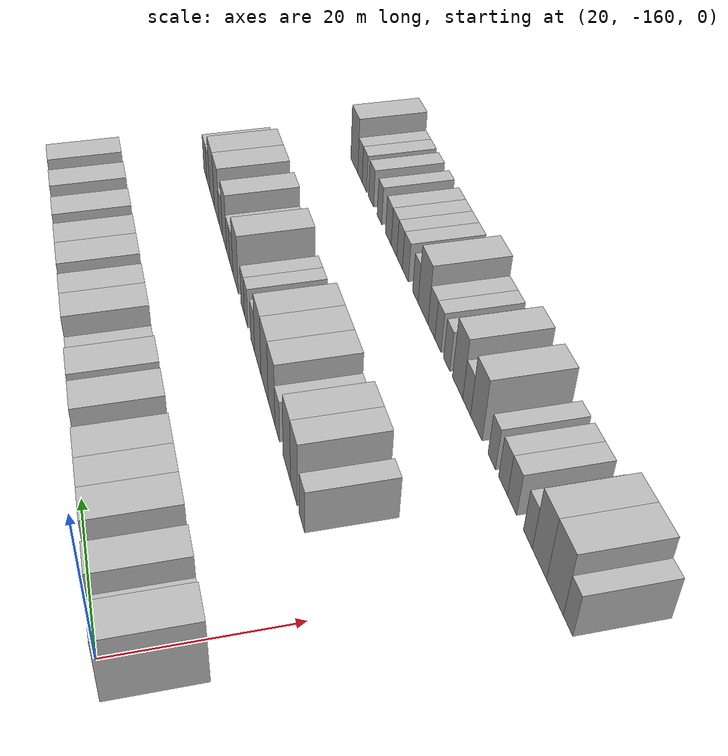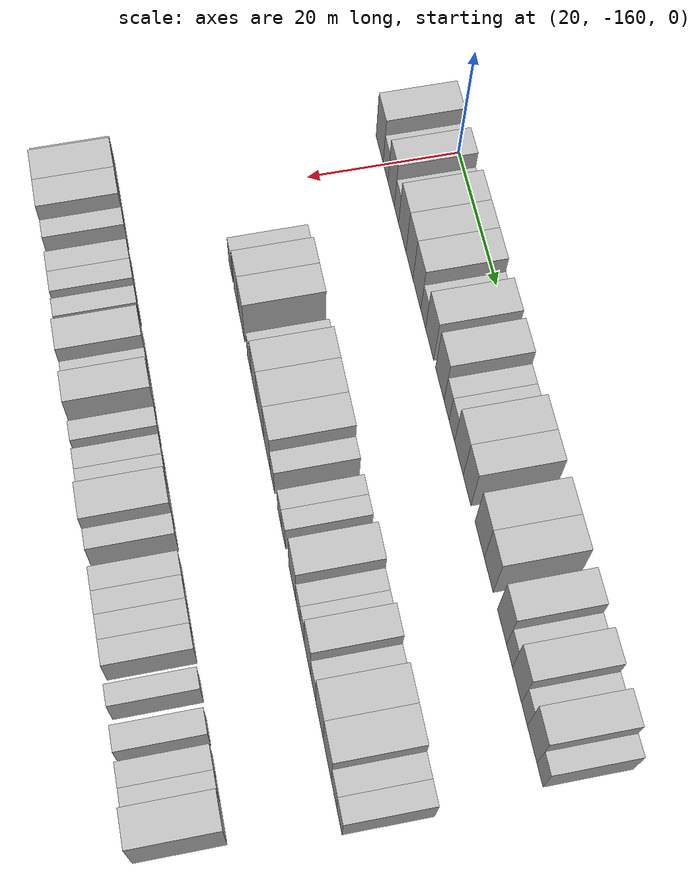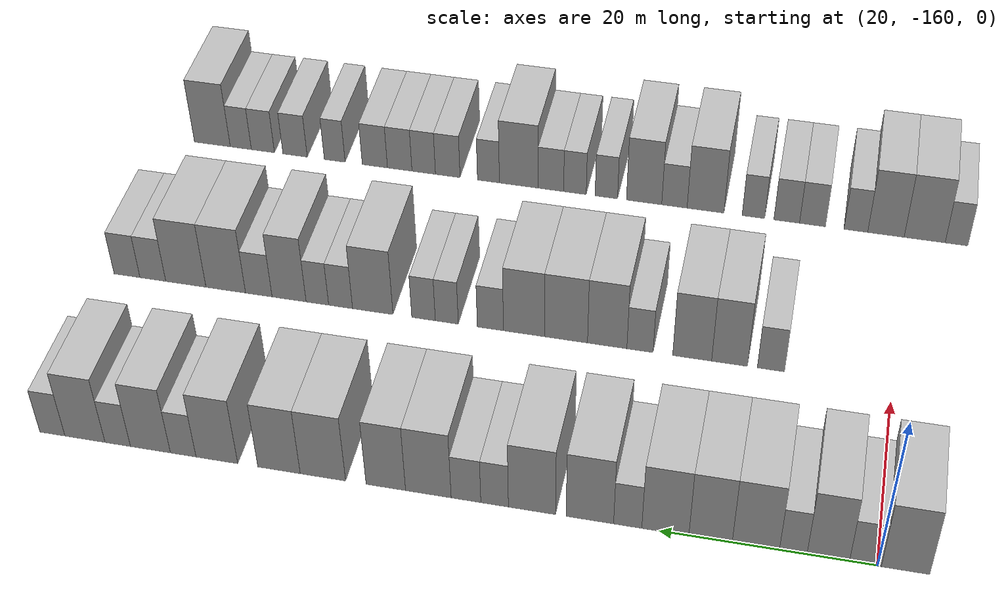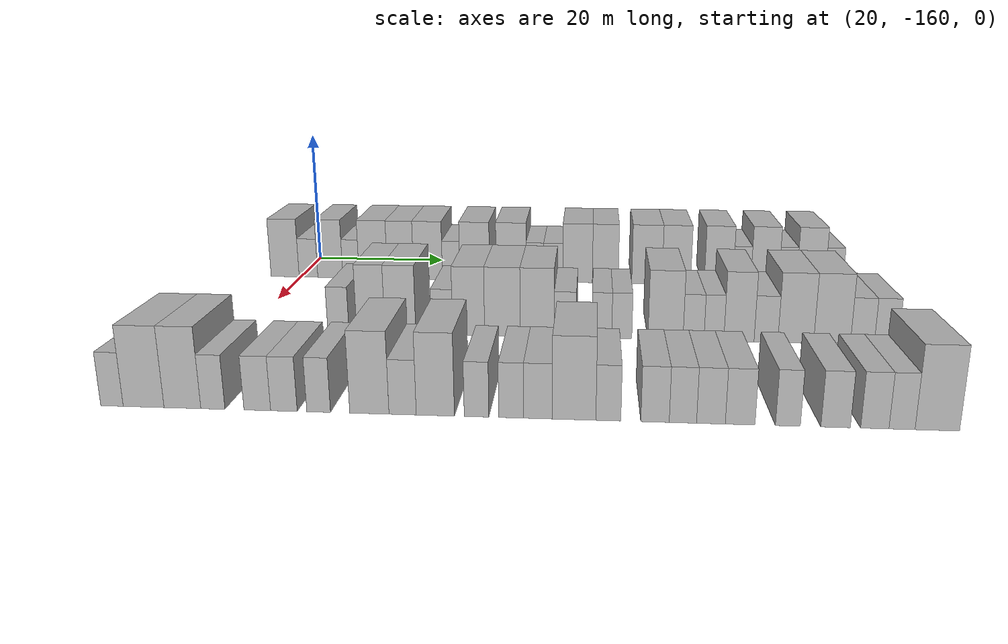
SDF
<sdf version="1.6">
 <world name="default">
  <model name="building_22">
   <static>1</static>
   <pose>25.0000 -162.4682 0 0.000000 0.000000 0.000000</pose>
   <link name="link">
    <pose>0 0 4.50 0 0 0</pose>
    <collision name="collision"><geometry><box><size>10.0000 4.3366 9.0000</size></box></geometry></collision>
    <visual name="visual">
     <cast_shadows>0</cast_shadows>
     <geometry><box><size>10.0000 4.3366 9.0000</size></box></geometry>
     <material>
      <script>
       <uri>model://HANNAS_wall/materials/scripts</uri>
       <uri>model://HANNAS_wall/materials/textures</uri>
       <name>vrc/HANNAS_wall</name>
      </script>
     </material>
    </visual>
   </link>
  </model>
  <model name="building_23">
   <static>1</static>
   <pose>25.0000 -158.8605 0 0.000000 0.000000 0.000000</pose>
   <link name="link">
    <pose>0 0 3.00 0 0 0</pose>
    <collision name="collision"><geometry><box><size>10.0000 2.8788 6.0000</size></box></geometry></collision>
    <visual name="visual">
     <cast_shadows>0</cast_shadows>
     <geometry><box><size>10.0000 2.8788 6.0000</size></box></geometry>
     <material>
      <script>
       <uri>model://HANNAS_wall/materials/scripts</uri>
       <uri>model://HANNAS_wall/materials/textures</uri>
       <name>vrc/HANNAS_wall</name>
      </script>
     </material>
    </visual>
   </link>
  </model>
  <model name="building_24">
   <static>1</static>
   <pose>25.0000 -155.4909 0 0.000000 0.000000 0.000000</pose>
   <link name="link">
    <pose>0 0 4.50 0 0 0</pose>
    <collision name="collision"><geometry><box><size>10.0000 3.8604 9.0000</size></box></geometry></collision>
    <visual name="visual">
     <cast_shadows>0</cast_shadows>
     <geometry><box><size>10.0000 3.8604 9.0000</size></box></geometry>
     <material>
      <script>
       <uri>model://HANNAS_wall/materials/scripts</uri>
       <uri>model://HANNAS_wall/materials/textures</uri>
       <name>vrc/HANNAS_wall</name>
      </script>
     </material>
    </visual>
   </link>
  </model>
  <model name="building_25">
   <static>1</static>
   <pose>25.0000 -152.3053 0 0.000000 0.000000 0.000000</pose>
   <link name="link">
    <pose>0 0 3.00 0 0 0</pose>
    <collision name="collision"><geometry><box><size>10.0000 2.5108 6.0000</size></box></geometry></collision>
    <visual name="visual">
     <cast_shadows>0</cast_shadows>
     <geometry><box><size>10.0000 2.5108 6.0000</size></box></geometry>
     <material>
      <script>
       <uri>model://HANNAS_wall/materials/scripts</uri>
       <uri>model://HANNAS_wall/materials/textures</uri>
       <name>vrc/HANNAS_wall</name>
      </script>
     </material>
    </visual>
   </link>
  </model>
  <model name="building_26">
   <static>1</static>
   <pose>25.0000 -148.8860 0 0.000000 0.000000 0.000000</pose>
   <link name="link">
    <pose>0 0 4.50 0 0 0</pose>
    <collision name="collision"><geometry><box><size>10.0000 4.3277 9.0000</size></box></geometry></collision>
    <visual name="visual">
     <cast_shadows>0</cast_shadows>
     <geometry><box><size>10.0000 4.3277 9.0000</size></box></geometry>
     <material>
      <script>
       <uri>model://HANNAS_wall/materials/scripts</uri>
       <uri>model://HANNAS_wall/materials/textures</uri>
       <name>vrc/HANNAS_wall</name>
      </script>
     </material>
    </visual>
   </link>
  </model>
  <model name="building_27">
   <static>1</static>
   <pose>25.0000 -144.7227 0 0.000000 0.000000 0.000000</pose>
   <link name="link">
    <pose>0 0 4.50 0 0 0</pose>
    <collision name="collision"><geometry><box><size>10.0000 3.9991 9.0000</size></box></geometry></collision>
    <visual name="visual">
     <cast_shadows>0</cast_shadows>
     <geometry><box><size>10.0000 3.9991 9.0000</size></box></geometry>
     <material>
      <script>
       <uri>model://HANNAS_wall/materials/scripts</uri>
       <uri>model://HANNAS_wall/materials/textures</uri>
       <name>vrc/HANNAS_wall</name>
      </script>
     </material>
    </visual>
   </link>
  </model>
  <model name="building_28">
   <static>1</static>
   <pose>25.0000 -140.5339 0 0.000000 0.000000 0.000000</pose>
   <link name="link">
    <pose>0 0 4.50 0 0 0</pose>
    <collision name="collision"><geometry><box><size>10.0000 4.3785 9.0000</size></box></geometry></collision>
    <visual name="visual">
     <cast_shadows>0</cast_shadows>
     <geometry><box><size>10.0000 4.3785 9.0000</size></box></geometry>
     <material>
      <script>
       <uri>model://HANNAS_wall/materials/scripts</uri>
       <uri>model://HANNAS_wall/materials/textures</uri>
       <name>vrc/HANNAS_wall</name>
      </script>
     </material>
    </visual>
   </link>
  </model>
  <model name="building_29">
   <static>1</static>
   <pose>25.0000 -137.0262 0 0.000000 0.000000 0.000000</pose>
   <link name="link">
    <pose>0 0 3.00 0 0 0</pose>
    <collision name="collision"><geometry><box><size>10.0000 2.6369 6.0000</size></box></geometry></collision>
    <visual name="visual">
     <cast_shadows>0</cast_shadows>
     <geometry><box><size>10.0000 2.6369 6.0000</size></box></geometry>
     <material>
      <script>
       <uri>model://HANNAS_wall/materials/scripts</uri>
       <uri>model://HANNAS_wall/materials/textures</uri>
       <name>vrc/HANNAS_wall</name>
      </script>
     </material>
    </visual>
   </link>
  </model>
  <model name="building_30">
   <static>1</static>
   <pose>25.0000 -133.4724 0 0.000000 0.000000 0.000000</pose>
   <link name="link">
    <pose>0 0 4.50 0 0 0</pose>
    <collision name="collision"><geometry><box><size>10.0000 4.4707 9.0000</size></box></geometry></collision>
    <visual name="visual">
     <cast_shadows>0</cast_shadows>
     <geometry><box><size>10.0000 4.4707 9.0000</size></box></geometry>
     <material>
      <script>
       <uri>model://HANNAS_wall/materials/scripts</uri>
       <uri>model://HANNAS_wall/materials/textures</uri>
       <name>vrc/HANNAS_wall</name>
      </script>
     </material>
    </visual>
   </link>
  </model>
  <model name="building_31">
   <static>1</static>
   <pose>25.0000 -128.0001 0 0.000000 0.000000 0.000000</pose>
   <link name="link">
    <pose>0 0 4.50 0 0 0</pose>
    <collision name="collision"><geometry><box><size>10.0000 4.4739 9.0000</size></box></geometry></collision>
    <visual name="visual">
     <cast_shadows>0</cast_shadows>
     <geometry><box><size>10.0000 4.4739 9.0000</size></box></geometry>
     <material>
      <script>
       <uri>model://HANNAS_wall/materials/scripts</uri>
       <uri>model://HANNAS_wall/materials/textures</uri>
       <name>vrc/HANNAS_wall</name>
      </script>
     </material>
    </visual>
   </link>
  </model>
  <model name="building_32">
   <static>1</static>
   <pose>25.0000 -124.4471 0 0.000000 0.000000 0.000000</pose>
   <link name="link">
    <pose>0 0 3.00 0 0 0</pose>
    <collision name="collision"><geometry><box><size>10.0000 2.6320 6.0000</size></box></geometry></collision>
    <visual name="visual">
     <cast_shadows>0</cast_shadows>
     <geometry><box><size>10.0000 2.6320 6.0000</size></box></geometry>
     <material>
      <script>
       <uri>model://HANNAS_wall/materials/scripts</uri>
       <uri>model://HANNAS_wall/materials/textures</uri>
       <name>vrc/HANNAS_wall</name>
      </script>
     </material>
    </visual>
   </link>
  </model>
  <model name="building_33">
   <static>1</static>
   <pose>25.0000 -121.7070 0 0.000000 0.000000 0.000000</pose>
   <link name="link">
    <pose>0 0 3.00 0 0 0</pose>
    <collision name="collision"><geometry><box><size>10.0000 2.8481 6.0000</size></box></geometry></collision>
    <visual name="visual">
     <cast_shadows>0</cast_shadows>
     <geometry><box><size>10.0000 2.8481 6.0000</size></box></geometry>
     <material>
      <script>
       <uri>model://HANNAS_wall/materials/scripts</uri>
       <uri>model://HANNAS_wall/materials/textures</uri>
       <name>vrc/HANNAS_wall</name>
      </script>
     </material>
    </visual>
   </link>
  </model>
  <model name="building_34">
   <static>1</static>
   <pose>25.0000 -118.0810 0 0.000000 0.000000 0.000000</pose>
   <link name="link">
    <pose>0 0 4.50 0 0 0</pose>
    <collision name="collision"><geometry><box><size>10.0000 4.4040 9.0000</size></box></geometry></collision>
    <visual name="visual">
     <cast_shadows>0</cast_shadows>
     <geometry><box><size>10.0000 4.4040 9.0000</size></box></geometry>
     <material>
      <script>
       <uri>model://HANNAS_wall/materials/scripts</uri>
       <uri>model://HANNAS_wall/materials/textures</uri>
       <name>vrc/HANNAS_wall</name>
      </script>
     </material>
    </visual>
   </link>
  </model>
  <model name="building_35">
   <static>1</static>
   <pose>25.0000 -113.9599 0 0.000000 0.000000 0.000000</pose>
   <link name="link">
    <pose>0 0 4.50 0 0 0</pose>
    <collision name="collision"><geometry><box><size>10.0000 3.8381 9.0000</size></box></geometry></collision>
    <visual name="visual">
     <cast_shadows>0</cast_shadows>
     <geometry><box><size>10.0000 3.8381 9.0000</size></box></geometry>
     <material>
      <script>
       <uri>model://HANNAS_wall/materials/scripts</uri>
       <uri>model://HANNAS_wall/materials/textures</uri>
       <name>vrc/HANNAS_wall</name>
      </script>
     </material>
    </visual>
   </link>
  </model>
  <model name="building_36">
   <static>1</static>
   <pose>25.0000 -107.8094 0 0.000000 0.000000 0.000000</pose>
   <link name="link">
    <pose>0 0 4.50 0 0 0</pose>
    <collision name="collision"><geometry><box><size>10.0000 4.4630 9.0000</size></box></geometry></collision>
    <visual name="visual">
     <cast_shadows>0</cast_shadows>
     <geometry><box><size>10.0000 4.4630 9.0000</size></box></geometry>
     <material>
      <script>
       <uri>model://HANNAS_wall/materials/scripts</uri>
       <uri>model://HANNAS_wall/materials/textures</uri>
       <name>vrc/HANNAS_wall</name>
      </script>
     </material>
    </visual>
   </link>
  </model>
  <model name="building_37">
   <static>1</static>
   <pose>25.0000 -103.4840 0 0.000000 0.000000 0.000000</pose>
   <link name="link">
    <pose>0 0 4.50 0 0 0</pose>
    <collision name="collision"><geometry><box><size>10.0000 4.1876 9.0000</size></box></geometry></collision>
    <visual name="visual">
     <cast_shadows>0</cast_shadows>
     <geometry><box><size>10.0000 4.1876 9.0000</size></box></geometry>
     <material>
      <script>
       <uri>model://HANNAS_wall/materials/scripts</uri>
       <uri>model://HANNAS_wall/materials/textures</uri>
       <name>vrc/HANNAS_wall</name>
      </script>
     </material>
    </visual>
   </link>
  </model>
  <model name="building_38">
   <static>1</static>
   <pose>25.0000 -97.3042 0 0.000000 0.000000 0.000000</pose>
   <link name="link">
    <pose>0 0 4.50 0 0 0</pose>
    <collision name="collision"><geometry><box><size>10.0000 4.1720 9.0000</size></box></geometry></collision>
    <visual name="visual">
     <cast_shadows>0</cast_shadows>
     <geometry><box><size>10.0000 4.1720 9.0000</size></box></geometry>
     <material>
      <script>
       <uri>model://HANNAS_wall/materials/scripts</uri>
       <uri>model://HANNAS_wall/materials/textures</uri>
       <name>vrc/HANNAS_wall</name>
      </script>
     </material>
    </visual>
   </link>
  </model>
  <model name="building_39">
   <static>1</static>
   <pose>25.0000 -93.9314 0 0.000000 0.000000 0.000000</pose>
   <link name="link">
    <pose>0 0 3.00 0 0 0</pose>
    <collision name="collision"><geometry><box><size>10.0000 2.5736 6.0000</size></box></geometry></collision>
    <visual name="visual">
     <cast_shadows>0</cast_shadows>
     <geometry><box><size>10.0000 2.5736 6.0000</size></box></geometry>
     <material>
      <script>
       <uri>model://HANNAS_wall/materials/scripts</uri>
       <uri>model://HANNAS_wall/materials/textures</uri>
       <name>vrc/HANNAS_wall</name>
      </script>
     </material>
    </visual>
   </link>
  </model>
  <model name="building_40">
   <static>1</static>
   <pose>25.0000 -90.6236 0 0.000000 0.000000 0.000000</pose>
   <link name="link">
    <pose>0 0 4.50 0 0 0</pose>
    <collision name="collision"><geometry><box><size>10.0000 4.0421 9.0000</size></box></geometry></collision>
    <visual name="visual">
     <cast_shadows>0</cast_shadows>
     <geometry><box><size>10.0000 4.0421 9.0000</size></box></geometry>
     <material>
      <script>
       <uri>model://HANNAS_wall/materials/scripts</uri>
       <uri>model://HANNAS_wall/materials/textures</uri>
       <name>vrc/HANNAS_wall</name>
      </script>
     </material>
    </visual>
   </link>
  </model>
  <model name="building_41">
   <static>1</static>
   <pose>25.0000 -87.3127 0 0.000000 0.000000 0.000000</pose>
   <link name="link">
    <pose>0 0 3.00 0 0 0</pose>
    <collision name="collision"><geometry><box><size>10.0000 2.5796 6.0000</size></box></geometry></collision>
    <visual name="visual">
     <cast_shadows>0</cast_shadows>
     <geometry><box><size>10.0000 2.5796 6.0000</size></box></geometry>
     <material>
      <script>
       <uri>model://HANNAS_wall/materials/scripts</uri>
       <uri>model://HANNAS_wall/materials/textures</uri>
       <name>vrc/HANNAS_wall</name>
      </script>
     </material>
    </visual>
   </link>
  </model>
  <model name="building_42">
   <static>1</static>
   <pose>25.0000 -83.9763 0 0.000000 0.000000 0.000000</pose>
   <link name="link">
    <pose>0 0 4.50 0 0 0</pose>
    <collision name="collision"><geometry><box><size>10.0000 4.0933 9.0000</size></box></geometry></collision>
    <visual name="visual">
     <cast_shadows>0</cast_shadows>
     <geometry><box><size>10.0000 4.0933 9.0000</size></box></geometry>
     <material>
      <script>
       <uri>model://HANNAS_wall/materials/scripts</uri>
       <uri>model://HANNAS_wall/materials/textures</uri>
       <name>vrc/HANNAS_wall</name>
      </script>
     </material>
    </visual>
   </link>
  </model>
  <model name="building_43">
   <static>1</static>
   <pose>25.0000 -80.6452 0 0.000000 0.000000 0.000000</pose>
   <link name="link">
    <pose>0 0 3.00 0 0 0</pose>
    <collision name="collision"><geometry><box><size>10.0000 2.5689 6.0000</size></box></geometry></collision>
    <visual name="visual">
     <cast_shadows>0</cast_shadows>
     <geometry><box><size>10.0000 2.5689 6.0000</size></box></geometry>
     <material>
      <script>
       <uri>model://HANNAS_wall/materials/scripts</uri>
       <uri>model://HANNAS_wall/materials/textures</uri>
       <name>vrc/HANNAS_wall</name>
      </script>
     </material>
    </visual>
   </link>
  </model>
  <model name="building_148">
   <static>1</static>
   <pose>47.0000 -147.9700 0 0.000000 0.000000 0.000000</pose>
   <link name="link">
    <pose>0 0 3.00 0 0 0</pose>
    <collision name="collision"><geometry><box><size>10.0000 2.7210 6.0000</size></box></geometry></collision>
    <visual name="visual">
     <cast_shadows>0</cast_shadows>
     <geometry><box><size>10.0000 2.7210 6.0000</size></box></geometry>
     <material>
      <script>
       <uri>model://HANNAS_wall/materials/scripts</uri>
       <uri>model://HANNAS_wall/materials/textures</uri>
       <name>vrc/HANNAS_wall</name>
      </script>
     </material>
    </visual>
   </link>
  </model>
  <model name="building_149">
   <static>1</static>
   <pose>47.0000 -143.8022 0 0.000000 0.000000 0.000000</pose>
   <link name="link">
    <pose>0 0 4.50 0 0 0</pose>
    <collision name="collision"><geometry><box><size>10.0000 3.6146 9.0000</size></box></geometry></collision>
    <visual name="visual">
     <cast_shadows>0</cast_shadows>
     <geometry><box><size>10.0000 3.6146 9.0000</size></box></geometry>
     <material>
      <script>
       <uri>model://HANNAS_wall/materials/scripts</uri>
       <uri>model://HANNAS_wall/materials/textures</uri>
       <name>vrc/HANNAS_wall</name>
      </script>
     </material>
    </visual>
   </link>
  </model>
  <model name="building_150">
   <static>1</static>
   <pose>47.0000 -140.0205 0 0.000000 0.000000 0.000000</pose>
   <link name="link">
    <pose>0 0 4.50 0 0 0</pose>
    <collision name="collision"><geometry><box><size>10.0000 3.9489 9.0000</size></box></geometry></collision>
    <visual name="visual">
     <cast_shadows>0</cast_shadows>
     <geometry><box><size>10.0000 3.9489 9.0000</size></box></geometry>
     <material>
      <script>
       <uri>model://HANNAS_wall/materials/scripts</uri>
       <uri>model://HANNAS_wall/materials/textures</uri>
       <name>vrc/HANNAS_wall</name>
      </script>
     </material>
    </visual>
   </link>
  </model>
  <model name="building_151">
   <static>1</static>
   <pose>47.0000 -134.7035 0 0.000000 0.000000 0.000000</pose>
   <link name="link">
    <pose>0 0 3.00 0 0 0</pose>
    <collision name="collision"><geometry><box><size>10.0000 2.6850 6.0000</size></box></geometry></collision>
    <visual name="visual">
     <cast_shadows>0</cast_shadows>
     <geometry><box><size>10.0000 2.6850 6.0000</size></box></geometry>
     <material>
      <script>
       <uri>model://HANNAS_wall/materials/scripts</uri>
       <uri>model://HANNAS_wall/materials/textures</uri>
       <name>vrc/HANNAS_wall</name>
      </script>
     </material>
    </visual>
   </link>
  </model>
  <model name="building_152">
   <static>1</static>
   <pose>47.0000 -131.3383 0 0.000000 0.000000 0.000000</pose>
   <link name="link">
    <pose>0 0 4.50 0 0 0</pose>
    <collision name="collision"><geometry><box><size>10.0000 4.0455 9.0000</size></box></geometry></collision>
    <visual name="visual">
     <cast_shadows>0</cast_shadows>
     <geometry><box><size>10.0000 4.0455 9.0000</size></box></geometry>
     <material>
      <script>
       <uri>model://HANNAS_wall/materials/scripts</uri>
       <uri>model://HANNAS_wall/materials/textures</uri>
       <name>vrc/HANNAS_wall</name>
      </script>
     </material>
    </visual>
   </link>
  </model>
  <model name="building_153">
   <static>1</static>
   <pose>47.0000 -127.0820 0 0.000000 0.000000 0.000000</pose>
   <link name="link">
    <pose>0 0 4.50 0 0 0</pose>
    <collision name="collision"><geometry><box><size>10.0000 4.4672 9.0000</size></box></geometry></collision>
    <visual name="visual">
     <cast_shadows>0</cast_shadows>
     <geometry><box><size>10.0000 4.4672 9.0000</size></box></geometry>
     <material>
      <script>
       <uri>model://HANNAS_wall/materials/scripts</uri>
       <uri>model://HANNAS_wall/materials/textures</uri>
       <name>vrc/HANNAS_wall</name>
      </script>
     </material>
    </visual>
   </link>
  </model>
  <model name="building_154">
   <static>1</static>
   <pose>47.0000 -122.7193 0 0.000000 0.000000 0.000000</pose>
   <link name="link">
    <pose>0 0 4.50 0 0 0</pose>
    <collision name="collision"><geometry><box><size>10.0000 4.2583 9.0000</size></box></geometry></collision>
    <visual name="visual">
     <cast_shadows>0</cast_shadows>
     <geometry><box><size>10.0000 4.2583 9.0000</size></box></geometry>
     <material>
      <script>
       <uri>model://HANNAS_wall/materials/scripts</uri>
       <uri>model://HANNAS_wall/materials/textures</uri>
       <name>vrc/HANNAS_wall</name>
      </script>
     </material>
    </visual>
   </link>
  </model>
  <model name="building_155">
   <static>1</static>
   <pose>47.0000 -119.2188 0 0.000000 0.000000 0.000000</pose>
   <link name="link">
    <pose>0 0 3.00 0 0 0</pose>
    <collision name="collision"><geometry><box><size>10.0000 2.7426 6.0000</size></box></geometry></collision>
    <visual name="visual">
     <cast_shadows>0</cast_shadows>
     <geometry><box><size>10.0000 2.7426 6.0000</size></box></geometry>
     <material>
      <script>
       <uri>model://HANNAS_wall/materials/scripts</uri>
       <uri>model://HANNAS_wall/materials/textures</uri>
       <name>vrc/HANNAS_wall</name>
      </script>
     </material>
    </visual>
   </link>
  </model>
  <model name="building_156">
   <static>1</static>
   <pose>47.0000 -114.6343 0 0.000000 0.000000 0.000000</pose>
   <link name="link">
    <pose>0 0 3.00 0 0 0</pose>
    <collision name="collision"><geometry><box><size>10.0000 2.4265 6.0000</size></box></geometry></collision>
    <visual name="visual">
     <cast_shadows>0</cast_shadows>
     <geometry><box><size>10.0000 2.4265 6.0000</size></box></geometry>
     <material>
      <script>
       <uri>model://HANNAS_wall/materials/scripts</uri>
       <uri>model://HANNAS_wall/materials/textures</uri>
       <name>vrc/HANNAS_wall</name>
      </script>
     </material>
    </visual>
   </link>
  </model>
  <model name="building_157">
   <static>1</static>
   <pose>47.0000 -112.1736 0 0.000000 0.000000 0.000000</pose>
   <link name="link">
    <pose>0 0 3.00 0 0 0</pose>
    <collision name="collision"><geometry><box><size>10.0000 2.4949 6.0000</size></box></geometry></collision>
    <visual name="visual">
     <cast_shadows>0</cast_shadows>
     <geometry><box><size>10.0000 2.4949 6.0000</size></box></geometry>
     <material>
      <script>
       <uri>model://HANNAS_wall/materials/scripts</uri>
       <uri>model://HANNAS_wall/materials/textures</uri>
       <name>vrc/HANNAS_wall</name>
      </script>
     </material>
    </visual>
   </link>
  </model>
  <model name="building_158">
   <static>1</static>
   <pose>47.0000 -106.7688 0 0.000000 0.000000 0.000000</pose>
   <link name="link">
    <pose>0 0 4.50 0 0 0</pose>
    <collision name="collision"><geometry><box><size>10.0000 4.3146 9.0000</size></box></geometry></collision>
    <visual name="visual">
     <cast_shadows>0</cast_shadows>
     <geometry><box><size>10.0000 4.3146 9.0000</size></box></geometry>
     <material>
      <script>
       <uri>model://HANNAS_wall/materials/scripts</uri>
       <uri>model://HANNAS_wall/materials/textures</uri>
       <name>vrc/HANNAS_wall</name>
      </script>
     </material>
    </visual>
   </link>
  </model>
  <model name="building_159">
   <static>1</static>
   <pose>47.0000 -103.3279 0 0.000000 0.000000 0.000000</pose>
   <link name="link">
    <pose>0 0 3.00 0 0 0</pose>
    <collision name="collision"><geometry><box><size>10.0000 2.5673 6.0000</size></box></geometry></collision>
    <visual name="visual">
     <cast_shadows>0</cast_shadows>
     <geometry><box><size>10.0000 2.5673 6.0000</size></box></geometry>
     <material>
      <script>
       <uri>model://HANNAS_wall/materials/scripts</uri>
       <uri>model://HANNAS_wall/materials/textures</uri>
       <name>vrc/HANNAS_wall</name>
      </script>
     </material>
    </visual>
   </link>
  </model>
  <model name="building_160">
   <static>1</static>
   <pose>47.0000 -100.8296 0 0.000000 0.000000 0.000000</pose>
   <link name="link">
    <pose>0 0 3.00 0 0 0</pose>
    <collision name="collision"><geometry><box><size>10.0000 2.4292 6.0000</size></box></geometry></collision>
    <visual name="visual">
     <cast_shadows>0</cast_shadows>
     <geometry><box><size>10.0000 2.4292 6.0000</size></box></geometry>
     <material>
      <script>
       <uri>model://HANNAS_wall/materials/scripts</uri>
       <uri>model://HANNAS_wall/materials/textures</uri>
       <name>vrc/HANNAS_wall</name>
      </script>
     </material>
    </visual>
   </link>
  </model>
  <model name="building_161">
   <static>1</static>
   <pose>47.0000 -97.7732 0 0.000000 0.000000 0.000000</pose>
   <link name="link">
    <pose>0 0 4.50 0 0 0</pose>
    <collision name="collision"><geometry><box><size>10.0000 3.6837 9.0000</size></box></geometry></collision>
    <visual name="visual">
     <cast_shadows>0</cast_shadows>
     <geometry><box><size>10.0000 3.6837 9.0000</size></box></geometry>
     <material>
      <script>
       <uri>model://HANNAS_wall/materials/scripts</uri>
       <uri>model://HANNAS_wall/materials/textures</uri>
       <name>vrc/HANNAS_wall</name>
      </script>
     </material>
    </visual>
   </link>
  </model>
  <model name="building_162">
   <static>1</static>
   <pose>47.0000 -94.4879 0 0.000000 0.000000 0.000000</pose>
   <link name="link">
    <pose>0 0 3.00 0 0 0</pose>
    <collision name="collision"><geometry><box><size>10.0000 2.8868 6.0000</size></box></geometry></collision>
    <visual name="visual">
     <cast_shadows>0</cast_shadows>
     <geometry><box><size>10.0000 2.8868 6.0000</size></box></geometry>
     <material>
      <script>
       <uri>model://HANNAS_wall/materials/scripts</uri>
       <uri>model://HANNAS_wall/materials/textures</uri>
       <name>vrc/HANNAS_wall</name>
      </script>
     </material>
    </visual>
   </link>
  </model>
  <model name="building_163">
   <static>1</static>
   <pose>47.0000 -90.8793 0 0.000000 0.000000 0.000000</pose>
   <link name="link">
    <pose>0 0 4.50 0 0 0</pose>
    <collision name="collision"><geometry><box><size>10.0000 4.3305 9.0000</size></box></geometry></collision>
    <visual name="visual">
     <cast_shadows>0</cast_shadows>
     <geometry><box><size>10.0000 4.3305 9.0000</size></box></geometry>
     <material>
      <script>
       <uri>model://HANNAS_wall/materials/scripts</uri>
       <uri>model://HANNAS_wall/materials/textures</uri>
       <name>vrc/HANNAS_wall</name>
      </script>
     </material>
    </visual>
   </link>
  </model>
  <model name="building_164">
   <static>1</static>
   <pose>47.0000 -86.4993 0 0.000000 0.000000 0.000000</pose>
   <link name="link">
    <pose>0 0 4.50 0 0 0</pose>
    <collision name="collision"><geometry><box><size>10.0000 4.4293 9.0000</size></box></geometry></collision>
    <visual name="visual">
     <cast_shadows>0</cast_shadows>
     <geometry><box><size>10.0000 4.4293 9.0000</size></box></geometry>
     <material>
      <script>
       <uri>model://HANNAS_wall/materials/scripts</uri>
       <uri>model://HANNAS_wall/materials/textures</uri>
       <name>vrc/HANNAS_wall</name>
      </script>
     </material>
    </visual>
   </link>
  </model>
  <model name="building_165">
   <static>1</static>
   <pose>47.0000 -82.8559 0 0.000000 0.000000 0.000000</pose>
   <link name="link">
    <pose>0 0 3.00 0 0 0</pose>
    <collision name="collision"><geometry><box><size>10.0000 2.8576 6.0000</size></box></geometry></collision>
    <visual name="visual">
     <cast_shadows>0</cast_shadows>
     <geometry><box><size>10.0000 2.8576 6.0000</size></box></geometry>
     <material>
      <script>
       <uri>model://HANNAS_wall/materials/scripts</uri>
       <uri>model://HANNAS_wall/materials/textures</uri>
       <name>vrc/HANNAS_wall</name>
      </script>
     </material>
    </visual>
   </link>
  </model>
  <model name="building_166">
   <static>1</static>
   <pose>47.0000 -79.9928 0 0.000000 0.000000 0.000000</pose>
   <link name="link">
    <pose>0 0 3.00 0 0 0</pose>
    <collision name="collision"><geometry><box><size>10.0000 2.8685 6.0000</size></box></geometry></collision>
    <visual name="visual">
     <cast_shadows>0</cast_shadows>
     <geometry><box><size>10.0000 2.8685 6.0000</size></box></geometry>
     <material>
      <script>
       <uri>model://HANNAS_wall/materials/scripts</uri>
       <uri>model://HANNAS_wall/materials/textures</uri>
       <name>vrc/HANNAS_wall</name>
      </script>
     </material>
    </visual>
   </link>
  </model>
  <model name="building_280">
   <static>1</static>
   <pose>69.0000 -165.6111 0 0.000000 0.000000 0.000000</pose>
   <link name="link">
    <pose>0 0 3.00 0 0 0</pose>
    <collision name="collision"><geometry><box><size>10.0000 2.4034 6.0000</size></box></geometry></collision>
    <visual name="visual">
     <cast_shadows>0</cast_shadows>
     <geometry><box><size>10.0000 2.4034 6.0000</size></box></geometry>
     <material>
      <script>
       <uri>model://HANNAS_wall/materials/scripts</uri>
       <uri>model://HANNAS_wall/materials/textures</uri>
       <name>vrc/HANNAS_wall</name>
      </script>
     </material>
    </visual>
   </link>
  </model>
  <model name="building_281">
   <static>1</static>
   <pose>69.0000 -162.2264 0 0.000000 0.000000 0.000000</pose>
   <link name="link">
    <pose>0 0 4.50 0 0 0</pose>
    <collision name="collision"><geometry><box><size>10.0000 4.3661 9.0000</size></box></geometry></collision>
    <visual name="visual">
     <cast_shadows>0</cast_shadows>
     <geometry><box><size>10.0000 4.3661 9.0000</size></box></geometry>
     <material>
      <script>
       <uri>model://HANNAS_wall/materials/scripts</uri>
       <uri>model://HANNAS_wall/materials/textures</uri>
       <name>vrc/HANNAS_wall</name>
      </script>
     </material>
    </visual>
   </link>
  </model>
  <model name="building_282">
   <static>1</static>
   <pose>69.0000 -158.0879 0 0.000000 0.000000 0.000000</pose>
   <link name="link">
    <pose>0 0 4.50 0 0 0</pose>
    <collision name="collision"><geometry><box><size>10.0000 3.9110 9.0000</size></box></geometry></collision>
    <visual name="visual">
     <cast_shadows>0</cast_shadows>
     <geometry><box><size>10.0000 3.9110 9.0000</size></box></geometry>
     <material>
      <script>
       <uri>model://HANNAS_wall/materials/scripts</uri>
       <uri>model://HANNAS_wall/materials/textures</uri>
       <name>vrc/HANNAS_wall</name>
      </script>
     </material>
    </visual>
   </link>
  </model>
  <model name="building_283">
   <static>1</static>
   <pose>69.0000 -154.8560 0 0.000000 0.000000 0.000000</pose>
   <link name="link">
    <pose>0 0 3.00 0 0 0</pose>
    <collision name="collision"><geometry><box><size>10.0000 2.5527 6.0000</size></box></geometry></collision>
    <visual name="visual">
     <cast_shadows>0</cast_shadows>
     <geometry><box><size>10.0000 2.5527 6.0000</size></box></geometry>
     <material>
      <script>
       <uri>model://HANNAS_wall/materials/scripts</uri>
       <uri>model://HANNAS_wall/materials/textures</uri>
       <name>vrc/HANNAS_wall</name>
      </script>
     </material>
    </visual>
   </link>
  </model>
  <model name="building_284">
   <static>1</static>
   <pose>69.0000 -150.1756 0 0.000000 0.000000 0.000000</pose>
   <link name="link">
    <pose>0 0 3.00 0 0 0</pose>
    <collision name="collision"><geometry><box><size>10.0000 2.8080 6.0000</size></box></geometry></collision>
    <visual name="visual">
     <cast_shadows>0</cast_shadows>
     <geometry><box><size>10.0000 2.8080 6.0000</size></box></geometry>
     <material>
      <script>
       <uri>model://HANNAS_wall/materials/scripts</uri>
       <uri>model://HANNAS_wall/materials/textures</uri>
       <name>vrc/HANNAS_wall</name>
      </script>
     </material>
    </visual>
   </link>
  </model>
  <model name="building_285">
   <static>1</static>
   <pose>69.0000 -147.3783 0 0.000000 0.000000 0.000000</pose>
   <link name="link">
    <pose>0 0 3.00 0 0 0</pose>
    <collision name="collision"><geometry><box><size>10.0000 2.7868 6.0000</size></box></geometry></collision>
    <visual name="visual">
     <cast_shadows>0</cast_shadows>
     <geometry><box><size>10.0000 2.7868 6.0000</size></box></geometry>
     <material>
      <script>
       <uri>model://HANNAS_wall/materials/scripts</uri>
       <uri>model://HANNAS_wall/materials/textures</uri>
       <name>vrc/HANNAS_wall</name>
      </script>
     </material>
    </visual>
   </link>
  </model>
  <model name="building_286">
   <static>1</static>
   <pose>69.0000 -143.7508 0 0.000000 0.000000 0.000000</pose>
   <link name="link">
    <pose>0 0 3.00 0 0 0</pose>
    <collision name="collision"><geometry><box><size>10.0000 2.4681 6.0000</size></box></geometry></collision>
    <visual name="visual">
     <cast_shadows>0</cast_shadows>
     <geometry><box><size>10.0000 2.4681 6.0000</size></box></geometry>
     <material>
      <script>
       <uri>model://HANNAS_wall/materials/scripts</uri>
       <uri>model://HANNAS_wall/materials/textures</uri>
       <name>vrc/HANNAS_wall</name>
      </script>
     </material>
    </visual>
   </link>
  </model>
  <model name="building_287">
   <static>1</static>
   <pose>69.0000 -138.4864 0 0.000000 0.000000 0.000000</pose>
   <link name="link">
    <pose>0 0 4.50 0 0 0</pose>
    <collision name="collision"><geometry><box><size>10.0000 4.0609 9.0000</size></box></geometry></collision>
    <visual name="visual">
     <cast_shadows>0</cast_shadows>
     <geometry><box><size>10.0000 4.0609 9.0000</size></box></geometry>
     <material>
      <script>
       <uri>model://HANNAS_wall/materials/scripts</uri>
       <uri>model://HANNAS_wall/materials/textures</uri>
       <name>vrc/HANNAS_wall</name>
      </script>
     </material>
    </visual>
   </link>
  </model>
  <model name="building_288">
   <static>1</static>
   <pose>69.0000 -135.0517 0 0.000000 0.000000 0.000000</pose>
   <link name="link">
    <pose>0 0 3.00 0 0 0</pose>
    <collision name="collision"><geometry><box><size>10.0000 2.8083 6.0000</size></box></geometry></collision>
    <visual name="visual">
     <cast_shadows>0</cast_shadows>
     <geometry><box><size>10.0000 2.8083 6.0000</size></box></geometry>
     <material>
      <script>
       <uri>model://HANNAS_wall/materials/scripts</uri>
       <uri>model://HANNAS_wall/materials/textures</uri>
       <name>vrc/HANNAS_wall</name>
      </script>
     </material>
    </visual>
   </link>
  </model>
  <model name="building_289">
   <static>1</static>
   <pose>69.0000 -131.6898 0 0.000000 0.000000 0.000000</pose>
   <link name="link">
    <pose>0 0 4.50 0 0 0</pose>
    <collision name="collision"><geometry><box><size>10.0000 3.9156 9.0000</size></box></geometry></collision>
    <visual name="visual">
     <cast_shadows>0</cast_shadows>
     <geometry><box><size>10.0000 3.9156 9.0000</size></box></geometry>
     <material>
      <script>
       <uri>model://HANNAS_wall/materials/scripts</uri>
       <uri>model://HANNAS_wall/materials/textures</uri>
       <name>vrc/HANNAS_wall</name>
      </script>
     </material>
    </visual>
   </link>
  </model>
  <model name="building_290">
   <static>1</static>
   <pose>69.0000 -127.4775 0 0.000000 0.000000 0.000000</pose>
   <link name="link">
    <pose>0 0 3.00 0 0 0</pose>
    <collision name="collision"><geometry><box><size>10.0000 2.5090 6.0000</size></box></geometry></collision>
    <visual name="visual">
     <cast_shadows>0</cast_shadows>
     <geometry><box><size>10.0000 2.5090 6.0000</size></box></geometry>
     <material>
      <script>
       <uri>model://HANNAS_wall/materials/scripts</uri>
       <uri>model://HANNAS_wall/materials/textures</uri>
       <name>vrc/HANNAS_wall</name>
      </script>
     </material>
    </visual>
   </link>
  </model>
  <model name="building_291">
   <static>1</static>
   <pose>69.0000 -123.9579 0 0.000000 0.000000 0.000000</pose>
   <link name="link">
    <pose>0 0 3.00 0 0 0</pose>
    <collision name="collision"><geometry><box><size>10.0000 2.5302 6.0000</size></box></geometry></collision>
    <visual name="visual">
     <cast_shadows>0</cast_shadows>
     <geometry><box><size>10.0000 2.5302 6.0000</size></box></geometry>
     <material>
      <script>
       <uri>model://HANNAS_wall/materials/scripts</uri>
       <uri>model://HANNAS_wall/materials/textures</uri>
       <name>vrc/HANNAS_wall</name>
      </script>
     </material>
    </visual>
   </link>
  </model>
  <model name="building_292">
   <static>1</static>
   <pose>69.0000 -121.2508 0 0.000000 0.000000 0.000000</pose>
   <link name="link">
    <pose>0 0 3.00 0 0 0</pose>
    <collision name="collision"><geometry><box><size>10.0000 2.8839 6.0000</size></box></geometry></collision>
    <visual name="visual">
     <cast_shadows>0</cast_shadows>
     <geometry><box><size>10.0000 2.8839 6.0000</size></box></geometry>
     <material>
      <script>
       <uri>model://HANNAS_wall/materials/scripts</uri>
       <uri>model://HANNAS_wall/materials/textures</uri>
       <name>vrc/HANNAS_wall</name>
      </script>
     </material>
    </visual>
   </link>
  </model>
  <model name="building_293">
   <static>1</static>
   <pose>69.0000 -117.6128 0 0.000000 0.000000 0.000000</pose>
   <link name="link">
    <pose>0 0 4.50 0 0 0</pose>
    <collision name="collision"><geometry><box><size>10.0000 4.3922 9.0000</size></box></geometry></collision>
    <visual name="visual">
     <cast_shadows>0</cast_shadows>
     <geometry><box><size>10.0000 4.3922 9.0000</size></box></geometry>
     <material>
      <script>
       <uri>model://HANNAS_wall/materials/scripts</uri>
       <uri>model://HANNAS_wall/materials/textures</uri>
       <name>vrc/HANNAS_wall</name>
      </script>
     </material>
    </visual>
   </link>
  </model>
  <model name="building_294">
   <static>1</static>
   <pose>69.0000 -114.1679 0 0.000000 0.000000 0.000000</pose>
   <link name="link">
    <pose>0 0 3.00 0 0 0</pose>
    <collision name="collision"><geometry><box><size>10.0000 2.4977 6.0000</size></box></geometry></collision>
    <visual name="visual">
     <cast_shadows>0</cast_shadows>
     <geometry><box><size>10.0000 2.4977 6.0000</size></box></geometry>
     <material>
      <script>
       <uri>model://HANNAS_wall/materials/scripts</uri>
       <uri>model://HANNAS_wall/materials/textures</uri>
       <name>vrc/HANNAS_wall</name>
      </script>
     </material>
    </visual>
   </link>
  </model>
  <model name="building_295">
   <static>1</static>
   <pose>69.0000 -109.5089 0 0.000000 0.000000 0.000000</pose>
   <link name="link">
    <pose>0 0 3.00 0 0 0</pose>
    <collision name="collision"><geometry><box><size>10.0000 2.8202 6.0000</size></box></geometry></collision>
    <visual name="visual">
     <cast_shadows>0</cast_shadows>
     <geometry><box><size>10.0000 2.8202 6.0000</size></box></geometry>
     <material>
      <script>
       <uri>model://HANNAS_wall/materials/scripts</uri>
       <uri>model://HANNAS_wall/materials/textures</uri>
       <name>vrc/HANNAS_wall</name>
      </script>
     </material>
    </visual>
   </link>
  </model>
  <model name="building_296">
   <static>1</static>
   <pose>69.0000 -106.7452 0 0.000000 0.000000 0.000000</pose>
   <link name="link">
    <pose>0 0 3.00 0 0 0</pose>
    <collision name="collision"><geometry><box><size>10.0000 2.7073 6.0000</size></box></geometry></collision>
    <visual name="visual">
     <cast_shadows>0</cast_shadows>
     <geometry><box><size>10.0000 2.7073 6.0000</size></box></geometry>
     <material>
      <script>
       <uri>model://HANNAS_wall/materials/scripts</uri>
       <uri>model://HANNAS_wall/materials/textures</uri>
       <name>vrc/HANNAS_wall</name>
      </script>
     </material>
    </visual>
   </link>
  </model>
  <model name="building_297">
   <static>1</static>
   <pose>69.0000 -103.9730 0 0.000000 0.000000 0.000000</pose>
   <link name="link">
    <pose>0 0 3.00 0 0 0</pose>
    <collision name="collision"><geometry><box><size>10.0000 2.8370 6.0000</size></box></geometry></collision>
    <visual name="visual">
     <cast_shadows>0</cast_shadows>
     <geometry><box><size>10.0000 2.8370 6.0000</size></box></geometry>
     <material>
      <script>
       <uri>model://HANNAS_wall/materials/scripts</uri>
       <uri>model://HANNAS_wall/materials/textures</uri>
       <name>vrc/HANNAS_wall</name>
      </script>
     </material>
    </visual>
   </link>
  </model>
  <model name="building_298">
   <static>1</static>
   <pose>69.0000 -101.0950 0 0.000000 0.000000 0.000000</pose>
   <link name="link">
    <pose>0 0 3.00 0 0 0</pose>
    <collision name="collision"><geometry><box><size>10.0000 2.9191 6.0000</size></box></geometry></collision>
    <visual name="visual">
     <cast_shadows>0</cast_shadows>
     <geometry><box><size>10.0000 2.9191 6.0000</size></box></geometry>
     <material>
      <script>
       <uri>model://HANNAS_wall/materials/scripts</uri>
       <uri>model://HANNAS_wall/materials/textures</uri>
       <name>vrc/HANNAS_wall</name>
      </script>
     </material>
    </visual>
   </link>
  </model>
  <model name="building_299">
   <static>1</static>
   <pose>69.0000 -96.4196 0 0.000000 0.000000 0.000000</pose>
   <link name="link">
    <pose>0 0 3.00 0 0 0</pose>
    <collision name="collision"><geometry><box><size>10.0000 2.4316 6.0000</size></box></geometry></collision>
    <visual name="visual">
     <cast_shadows>0</cast_shadows>
     <geometry><box><size>10.0000 2.4316 6.0000</size></box></geometry>
     <material>
      <script>
       <uri>model://HANNAS_wall/materials/scripts</uri>
       <uri>model://HANNAS_wall/materials/textures</uri>
       <name>vrc/HANNAS_wall</name>
      </script>
     </material>
    </visual>
   </link>
  </model>
  <model name="building_300">
   <static>1</static>
   <pose>69.0000 -91.7737 0 0.000000 0.000000 0.000000</pose>
   <link name="link">
    <pose>0 0 3.00 0 0 0</pose>
    <collision name="collision"><geometry><box><size>10.0000 2.8603 6.0000</size></box></geometry></collision>
    <visual name="visual">
     <cast_shadows>0</cast_shadows>
     <geometry><box><size>10.0000 2.8603 6.0000</size></box></geometry>
     <material>
      <script>
       <uri>model://HANNAS_wall/materials/scripts</uri>
       <uri>model://HANNAS_wall/materials/textures</uri>
       <name>vrc/HANNAS_wall</name>
      </script>
     </material>
    </visual>
   </link>
  </model>
  <model name="building_301">
   <static>1</static>
   <pose>69.0000 -87.9797 0 0.000000 0.000000 0.000000</pose>
   <link name="link">
    <pose>0 0 3.00 0 0 0</pose>
    <collision name="collision"><geometry><box><size>10.0000 2.7276 6.0000</size></box></geometry></collision>
    <visual name="visual">
     <cast_shadows>0</cast_shadows>
     <geometry><box><size>10.0000 2.7276 6.0000</size></box></geometry>
     <material>
      <script>
       <uri>model://HANNAS_wall/materials/scripts</uri>
       <uri>model://HANNAS_wall/materials/textures</uri>
       <name>vrc/HANNAS_wall</name>
      </script>
     </material>
    </visual>
   </link>
  </model>
  <model name="building_302">
   <static>1</static>
   <pose>69.0000 -85.3628 0 0.000000 0.000000 0.000000</pose>
   <link name="link">
    <pose>0 0 3.00 0 0 0</pose>
    <collision name="collision"><geometry><box><size>10.0000 2.5062 6.0000</size></box></geometry></collision>
    <visual name="visual">
     <cast_shadows>0</cast_shadows>
     <geometry><box><size>10.0000 2.5062 6.0000</size></box></geometry>
     <material>
      <script>
       <uri>model://HANNAS_wall/materials/scripts</uri>
       <uri>model://HANNAS_wall/materials/textures</uri>
       <name>vrc/HANNAS_wall</name>
      </script>
     </material>
    </visual>
   </link>
  </model>
  <model name="building_303">
   <static>1</static>
   <pose>69.0000 -81.9772 0 0.000000 0.000000 0.000000</pose>
   <link name="link">
    <pose>0 0 4.50 0 0 0</pose>
    <collision name="collision"><geometry><box><size>10.0000 4.2651 9.0000</size></box></geometry></collision>
    <visual name="visual">
     <cast_shadows>0</cast_shadows>
     <geometry><box><size>10.0000 4.2651 9.0000</size></box></geometry>
     <material>
      <script>
       <uri>model://HANNAS_wall/materials/scripts</uri>
       <uri>model://HANNAS_wall/materials/textures</uri>
       <name>vrc/HANNAS_wall</name>
      </script>
     </material>
    </visual>
   </link>
  </model>
 </world>
</sdf>
